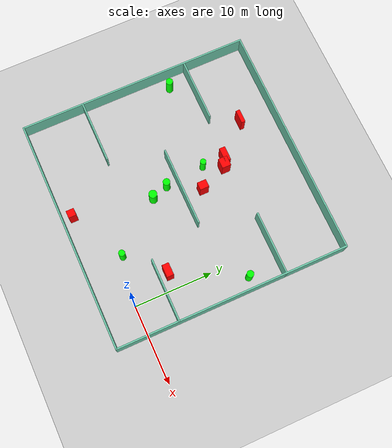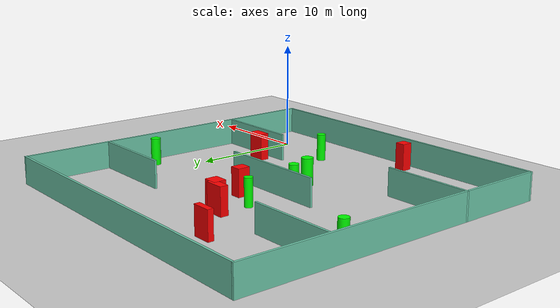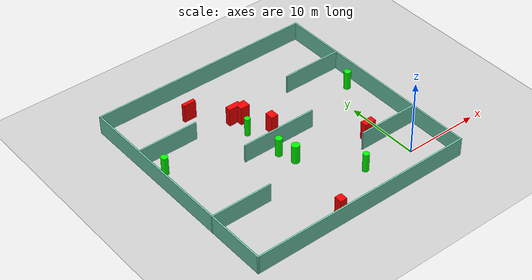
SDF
<sdf version="1.7">
 <world name="default">
  <light name="sun" type="directional">
   <pose>0 0 10 0 -0 0</pose>
   <diffuse>0.8 0.8 0.8 1</diffuse>
   <specular>0.2 0.2 0.2 1</specular>
   <attenuation>
    <range>1000</range>
    <constant>0.9</constant>
    <linear>0.01</linear>
    <quadratic>0.001</quadratic>
   </attenuation>
   <direction>-0.5 0.1 -0.9</direction>
   <spot><inner_angle>0</inner_angle><outer_angle>0</outer_angle><falloff>0</falloff></spot>
  </light>
  <model name="ground_plane">
   <static>1</static>
   <link name="link">
    <collision name="collision">
     <geometry><plane><normal>0 0 1</normal><size>100 100</size></plane></geometry>
     <surface>
      <contact><collide_bitmask>65535</collide_bitmask></contact>
      <friction><ode><mu>100</mu><mu2>50</mu2></ode></friction>
     </surface>
    </collision>
    <visual name="visual">
     <cast_shadows>0</cast_shadows>
     <geometry><plane><normal>0 0 1</normal><size>100 100</size></plane></geometry>
     <material>
      <script><uri>file://media/materials/scripts/gazebo.material</uri><name>Gazebo/Grey</name></script>
     </material>
    </visual>
   </link>
  </model>
  <gravity>0 0 -9.8</gravity>
  <magnetic_field>6e-06 2.3e-05 -4.2e-05</magnetic_field>
  <atmosphere type="adiabatic"/>
  <physics type="ode">
   <max_step_size>0.001</max_step_size>
   <real_time_factor>1</real_time_factor>
   <real_time_update_rate>1000</real_time_update_rate>
  </physics>
  <scene><ambient>0.4 0.4 0.4 1</ambient><background>0.7 0.7 0.7 1</background><shadows>1</shadows></scene>
  <spherical_coordinates>
   <surface_model>EARTH_WGS84</surface_model>
   <latitude_deg>0</latitude_deg>
   <longitude_deg>0</longitude_deg>
   <elevation>0</elevation>
   <heading_deg>0</heading_deg>
  </spherical_coordinates>
  <model name="my_base_walls">
   <link name="Wall_10">
    <collision name="Wall_10_Collision">
     <geometry><box><size>8.2 0.2 2.5</size></box></geometry>
     <pose>0 0 1.25 0 -0 0</pose>
    </collision>
    <visual name="Wall_10_Visual">
     <pose>0 0 1.25 0 -0 0</pose>
     <geometry><box><size>8.2 0.2 2.5</size></box></geometry>
     <material>
      <script><uri>file://media/materials/scripts/gazebo.material</uri><name>Gazebo/Grey</name></script>
      <ambient>0.435294 0.796078 0.67451 1</ambient>
     </material>
     <meta><layer>0</layer></meta>
    </visual>
    <pose>-11 -7 0 0 -0 0</pose>
   </link>
   <link name="Wall_12">
    <collision name="Wall_12_Collision">
     <geometry><box><size>8.2 0.2 2.5</size></box></geometry>
     <pose>0 0 1.25 0 -0 0</pose>
    </collision>
    <visual name="Wall_12_Visual">
     <pose>0 0 1.25 0 -0 0</pose>
     <geometry><box><size>8.2 0.2 2.5</size></box></geometry>
     <material>
      <script><uri>file://media/materials/scripts/gazebo.material</uri><name>Gazebo/Grey</name></script>
      <ambient>0.435294 0.796078 0.67451 1</ambient>
     </material>
     <meta><layer>0</layer></meta>
    </visual>
    <pose>-11 7 0 0 -0 0</pose>
   </link>
   <link name="Wall_14">
    <collision name="Wall_14_Collision">
     <geometry><box><size>8.2 0.2 2.5</size></box></geometry>
     <pose>0 0 1.25 0 -0 0</pose>
    </collision>
    <visual name="Wall_14_Visual">
     <pose>0 0 1.25 0 -0 0</pose>
     <geometry><box><size>8.2 0.2 2.5</size></box></geometry>
     <material>
      <script><uri>file://media/materials/scripts/gazebo.material</uri><name>Gazebo/Grey</name></script>
      <ambient>0.435294 0.796078 0.67451 1</ambient>
     </material>
     <meta><layer>0</layer></meta>
    </visual>
    <pose>11 7 0 0 -0 3.14159</pose>
   </link>
   <link name="Wall_16">
    <collision name="Wall_16_Collision">
     <geometry><box><size>10.2 0.2 2.5</size></box></geometry>
     <pose>0 0 1.25 0 -0 0</pose>
    </collision>
    <visual name="Wall_16_Visual">
     <pose>0 0 1.25 0 -0 0</pose>
     <geometry><box><size>10.2 0.2 2.5</size></box></geometry>
     <material>
      <script><uri>file://media/materials/scripts/gazebo.material</uri><name>Gazebo/Grey</name></script>
      <ambient>0.435294 0.796078 0.67451 1</ambient>
     </material>
     <meta><layer>0</layer></meta>
    </visual>
    <pose>0 0 0 0 -0 3.14159</pose>
   </link>
   <link name="Wall_2">
    <collision name="Wall_2_Collision">
     <geometry><box><size>30.2 0.2 2.5</size></box></geometry>
     <pose>0 0 1.25 0 -0 0</pose>
    </collision>
    <visual name="Wall_2_Visual">
     <pose>0 0 1.25 0 -0 0</pose>
     <geometry><box><size>30.2 0.2 2.5</size></box></geometry>
     <material>
      <script><uri>file://media/materials/scripts/gazebo.material</uri><name>Gazebo/Grey</name></script>
      <ambient>0.435294 0.796078 0.67451 1</ambient>
     </material>
     <meta><layer>0</layer></meta>
    </visual>
    <pose>0 -15 0 0 -0 3.14159</pose>
   </link>
   <link name="Wall_3">
    <collision name="Wall_3_Collision">
     <geometry><box><size>30.2 0.2 2.5</size></box></geometry>
     <pose>0 0 1.25 0 -0 0</pose>
    </collision>
    <visual name="Wall_3_Visual">
     <pose>0 0 1.25 0 -0 0</pose>
     <geometry><box><size>30.2 0.2 2.5</size></box></geometry>
     <material>
      <script><uri>file://media/materials/scripts/gazebo.material</uri><name>Gazebo/Grey</name></script>
      <ambient>0.435294 0.796078 0.67451 1</ambient>
     </material>
     <meta><layer>0</layer></meta>
    </visual>
    <pose>-15 0 0 0 -0 1.5708</pose>
   </link>
   <link name="Wall_4">
    <collision name="Wall_4_Collision">
     <geometry><box><size>30.2 0.2 2.5</size></box></geometry>
     <pose>0 0 1.25 0 -0 0</pose>
    </collision>
    <visual name="Wall_4_Visual">
     <pose>0 0 1.25 0 -0 0</pose>
     <geometry><box><size>30.2 0.2 2.5</size></box></geometry>
     <material>
      <script><uri>file://media/materials/scripts/gazebo.material</uri><name>Gazebo/Grey</name></script>
      <ambient>0.435294 0.796078 0.67451 1</ambient>
     </material>
     <meta><layer>0</layer></meta>
    </visual>
    <pose>0 15 0 0 -0 0</pose>
   </link>
   <link name="Wall_6">
    <collision name="Wall_6_Collision">
     <geometry><box><size>30.2 0.2 2.5</size></box></geometry>
     <pose>0 0 1.25 0 -0 0</pose>
    </collision>
    <visual name="Wall_6_Visual">
     <pose>0 0 1.25 0 -0 0</pose>
     <geometry><box><size>30.2 0.2 2.5</size></box></geometry>
     <material>
      <script><uri>file://media/materials/scripts/gazebo.material</uri><name>Gazebo/Grey</name></script>
      <ambient>0.435294 0.796078 0.67451 1</ambient>
     </material>
     <meta><layer>0</layer></meta>
    </visual>
    <pose>15 0 0 0 -0 1.5708</pose>
   </link>
   <link name="Wall_8">
    <collision name="Wall_8_Collision">
     <geometry><box><size>8.2 0.2 2.5</size></box></geometry>
     <pose>0 0 1.25 0 -0 0</pose>
    </collision>
    <visual name="Wall_8_Visual">
     <pose>0 0 1.25 0 -0 0</pose>
     <geometry><box><size>8.2 0.2 2.5</size></box></geometry>
     <material>
      <script><uri>file://media/materials/scripts/gazebo.material</uri><name>Gazebo/Grey</name></script>
      <ambient>0.435294 0.796078 0.67451 1</ambient>
     </material>
     <meta><layer>0</layer></meta>
    </visual>
    <pose>11 -7 0 0 -0 3.14159</pose>
   </link>
   <static>1</static>
   <pose>-11 11 0 0 -0 0</pose>
  </model>
  <model name="cylinder1">
   <static>1</static>
   <link name="link">
    <inertial>
     <mass>1</mass>
     <inertia><ixx>0.5</ixx><ixy>0</ixy><ixz>0</ixz><iyy>0.5</iyy><iyz>0</iyz><izz>1</izz></inertia>
    </inertial>
    <collision name="collision">
     <geometry><cylinder><radius>0.4485898908668819</radius><length>2.5</length></cylinder></geometry>
    </collision>
    <visual name="visual">
     <geometry><cylinder><radius>0.4485898908668819</radius><length>2.5</length></cylinder></geometry>
     <material>
      <ambient>0 1 0 1</ambient>
      <diffuse>0 1 0 1</diffuse>
      <specular>0.1 0.1 0.1 1</specular>
      <emissive>0 0 0 0</emissive>
     </material>
    </visual>
   </link>
   <pose>-24.36389779188466 15.281296770873539 1.25 0 0 0</pose>
  </model>
  <model name="cylinder2">
   <static>1</static>
   <link name="link">
    <inertial>
     <mass>1</mass>
     <inertia><ixx>0.5</ixx><ixy>0</ixy><ixz>0</ixz><iyy>0.5</iyy><iyz>0</iyz><izz>1</izz></inertia>
    </inertial>
    <collision name="collision">
     <geometry><cylinder><radius>0.37526800229921364</radius><length>2.5</length></cylinder></geometry>
    </collision>
    <visual name="visual">
     <geometry><cylinder><radius>0.37526800229921364</radius><length>2.5</length></cylinder></geometry>
     <material>
      <ambient>0 1 0 1</ambient>
      <diffuse>0 1 0 1</diffuse>
      <specular>0.1 0.1 0.1 1</specular>
      <emissive>0 0 0 0</emissive>
     </material>
    </visual>
   </link>
   <pose>-12.775687343232121 14.7238667373265 1.25 0 0 0</pose>
  </model>
  <model name="cylinder3">
   <static>1</static>
   <link name="link">
    <inertial>
     <mass>1</mass>
     <inertia><ixx>0.5</ixx><ixy>0</ixy><ixz>0</ixz><iyy>0.5</iyy><iyz>0</iyz><izz>1</izz></inertia>
    </inertial>
    <collision name="collision">
     <geometry><cylinder><radius>0.4526019746180843</radius><length>2.5</length></cylinder></geometry>
    </collision>
    <visual name="visual">
     <geometry><cylinder><radius>0.4526019746180843</radius><length>2.5</length></cylinder></geometry>
     <material>
      <ambient>0 1 0 1</ambient>
      <diffuse>0 1 0 1</diffuse>
      <specular>0.1 0.1 0.1 1</specular>
      <emissive>0 0 0 0</emissive>
     </material>
    </visual>
   </link>
   <pose>-12.212944327811543 9.513966686532909 1.25 0 0 0</pose>
  </model>
  <model name="cylinder4">
   <static>1</static>
   <link name="link">
    <inertial>
     <mass>1</mass>
     <inertia><ixx>0.5</ixx><ixy>0</ixy><ixz>0</ixz><iyy>0.5</iyy><iyz>0</iyz><izz>1</izz></inertia>
    </inertial>
    <collision name="collision">
     <geometry><cylinder><radius>0.44561441865999263</radius><length>2.5</length></cylinder></geometry>
    </collision>
    <visual name="visual">
     <geometry><cylinder><radius>0.44561441865999263</radius><length>2.5</length></cylinder></geometry>
     <material>
      <ambient>0 1 0 1</ambient>
      <diffuse>0 1 0 1</diffuse>
      <specular>0.1 0.1 0.1 1</specular>
      <emissive>0 0 0 0</emissive>
     </material>
    </visual>
   </link>
   <pose>2.362073603507749 13.990699258387384 1.25 0 0 0</pose>
  </model>
  <model name="cylinder5">
   <static>1</static>
   <link name="link">
    <inertial>
     <mass>1</mass>
     <inertia><ixx>0.5</ixx><ixy>0</ixy><ixz>0</ixz><iyy>0.5</iyy><iyz>0</iyz><izz>1</izz></inertia>
    </inertial>
    <collision name="collision">
     <geometry><cylinder><radius>0.40488233055735207</radius><length>2.5</length></cylinder></geometry>
    </collision>
    <visual name="visual">
     <geometry><cylinder><radius>0.40488233055735207</radius><length>2.5</length></cylinder></geometry>
     <material>
      <ambient>0 1 0 1</ambient>
      <diffuse>0 1 0 1</diffuse>
      <specular>0.1 0.1 0.1 1</specular>
      <emissive>0 0 0 0</emissive>
     </material>
    </visual>
   </link>
   <pose>-6.223360767048227 1.0128150446554276 1.25 0 0 0</pose>
  </model>
  <model name="cylinder6">
   <static>1</static>
   <link name="link">
    <inertial>
     <mass>1</mass>
     <inertia><ixx>0.5</ixx><ixy>0</ixy><ixz>0</ixz><iyy>0.5</iyy><iyz>0</iyz><izz>1</izz></inertia>
    </inertial>
    <collision name="collision">
     <geometry><cylinder><radius>0.5264650209010874</radius><length>2.5</length></cylinder></geometry>
    </collision>
    <visual name="visual">
     <geometry><cylinder><radius>0.5264650209010874</radius><length>2.5</length></cylinder></geometry>
     <material>
      <ambient>0 1 0 1</ambient>
      <diffuse>0 1 0 1</diffuse>
      <specular>0.1 0.1 0.1 1</specular>
      <emissive>0 0 0 0</emissive>
     </material>
    </visual>
   </link>
   <pose>-11.468564601120384 7.3650197911244 1.25 0 0 0</pose>
  </model>
  <model name="box1">
   <static>1</static>
   <link name="link">
    <inertial>
     <mass>1</mass>
     <inertia><ixx>0.083</ixx><ixy>0</ixy><ixz>0</ixz><iyy>0.083</iyy><iyz>0</iyz><izz>0.083</izz></inertia>
    </inertial>
    <collision name="collision">
     <geometry><box><size>0.9354241694805887 1.002076307104207 2.5</size></box></geometry>
    </collision>
    <visual name="visual">
     <geometry><box><size>0.9354241694805887 1.002076307104207 2.5</size></box></geometry>
     <material>
      <ambient>1 0 0 1</ambient>
      <diffuse>1 0 0 1</diffuse>
      <specular>0.1 0.1 0.1 1</specular>
      <emissive>0 0 0 0</emissive>
     </material>
    </visual>
    <sensor name="my_contact" type="contact">
     <contact><collision>box_collision</collision><topic>__default_topic__</topic></contact>
    </sensor>
   </link>
   <pose>-13.310511063165205 -2.6786853064854754 1.25 0 0 0</pose>
  </model>
  <model name="box2">
   <static>1</static>
   <link name="link">
    <inertial>
     <mass>1</mass>
     <inertia><ixx>0.083</ixx><ixy>0</ixy><ixz>0</ixz><iyy>0.083</iyy><iyz>0</iyz><izz>0.083</izz></inertia>
    </inertial>
    <collision name="collision">
     <geometry><box><size>1.7142705495918986 0.5187961219421813 2.5</size></box></geometry>
    </collision>
    <visual name="visual">
     <geometry><box><size>1.7142705495918986 0.5187961219421813 2.5</size></box></geometry>
     <material>
      <ambient>1 0 0 1</ambient>
      <diffuse>1 0 0 1</diffuse>
      <specular>0.1 0.1 0.1 1</specular>
      <emissive>0 0 0 0</emissive>
     </material>
    </visual>
    <sensor name="my_contact" type="contact">
     <contact><collision>box_collision</collision><topic>__default_topic__</topic></contact>
    </sensor>
   </link>
   <pose>-16.35567906157586 21.52961127372647 1.25 0 0 0</pose>
  </model>
  <model name="box3">
   <static>1</static>
   <link name="link">
    <inertial>
     <mass>1</mass>
     <inertia><ixx>0.083</ixx><ixy>0</ixy><ixz>0</ixz><iyy>0.083</iyy><iyz>0</iyz><izz>0.083</izz></inertia>
    </inertial>
    <collision name="collision">
     <geometry><box><size>1.2895775478213154 1.1464084893939388 2.5</size></box></geometry>
    </collision>
    <visual name="visual">
     <geometry><box><size>1.2895775478213154 1.1464084893939388 2.5</size></box></geometry>
     <material>
      <ambient>1 0 0 1</ambient>
      <diffuse>1 0 0 1</diffuse>
      <specular>0.1 0.1 0.1 1</specular>
      <emissive>0 0 0 0</emissive>
     </material>
    </visual>
    <sensor name="my_contact" type="contact">
     <contact><collision>box_collision</collision><topic>__default_topic__</topic></contact>
    </sensor>
   </link>
   <pose>-11.64795543887662 17.129842050402367 1.25 0 0 0</pose>
  </model>
  <model name="box4">
   <static>1</static>
   <link name="link">
    <inertial>
     <mass>1</mass>
     <inertia><ixx>0.083</ixx><ixy>0</ixy><ixz>0</ixz><iyy>0.083</iyy><iyz>0</iyz><izz>0.083</izz></inertia>
    </inertial>
    <collision name="collision">
     <geometry><box><size>1.8186439257466007 0.7439229432828764 2.5</size></box></geometry>
    </collision>
    <visual name="visual">
     <geometry><box><size>1.8186439257466007 0.7439229432828764 2.5</size></box></geometry>
     <material>
      <ambient>1 0 0 1</ambient>
      <diffuse>1 0 0 1</diffuse>
      <specular>0.1 0.1 0.1 1</specular>
      <emissive>0 0 0 0</emissive>
     </material>
    </visual>
    <sensor name="my_contact" type="contact">
     <contact><collision>box_collision</collision><topic>__default_topic__</topic></contact>
    </sensor>
   </link>
   <pose>-12.575766235607187 17.624370401664724 1.25 0 0 0</pose>
  </model>
  <model name="box5">
   <static>1</static>
   <link name="link">
    <inertial>
     <mass>1</mass>
     <inertia><ixx>0.083</ixx><ixy>0</ixy><ixz>0</ixz><iyy>0.083</iyy><iyz>0</iyz><izz>0.083</izz></inertia>
    </inertial>
    <collision name="collision">
     <geometry><box><size>0.9914260083032582 1.1584333221475134 2.5</size></box></geometry>
    </collision>
    <visual name="visual">
     <geometry><box><size>0.9914260083032582 1.1584333221475134 2.5</size></box></geometry>
     <material>
      <ambient>1 0 0 1</ambient>
      <diffuse>1 0 0 1</diffuse>
      <specular>0.1 0.1 0.1 1</specular>
      <emissive>0 0 0 0</emissive>
     </material>
    </visual>
    <sensor name="my_contact" type="contact">
     <contact><collision>box_collision</collision><topic>__default_topic__</topic></contact>
    </sensor>
   </link>
   <pose>-10.059376735739528 13.472814673937897 1.25 0 0 0</pose>
  </model>
  <model name="box6">
   <static>1</static>
   <link name="link">
    <inertial>
     <mass>1</mass>
     <inertia><ixx>0.083</ixx><ixy>0</ixy><ixz>0</ixz><iyy>0.083</iyy><iyz>0</iyz><izz>0.083</izz></inertia>
    </inertial>
    <collision name="collision">
     <geometry><box><size>1.5955046997290219 0.8847945087441018 2.5</size></box></geometry>
    </collision>
    <visual name="visual">
     <geometry><box><size>1.5955046997290219 0.8847945087441018 2.5</size></box></geometry>
     <material>
      <ambient>1 0 0 1</ambient>
      <diffuse>1 0 0 1</diffuse>
      <specular>0.1 0.1 0.1 1</specular>
      <emissive>0 0 0 0</emissive>
     </material>
    </visual>
    <sensor name="my_contact" type="contact">
     <contact><collision>box_collision</collision><topic>__default_topic__</topic></contact>
    </sensor>
   </link>
   <pose>-2.094007145828943 5.2196856848159605 1.25 0 0 0</pose>
  </model>
 </world>
</sdf>
